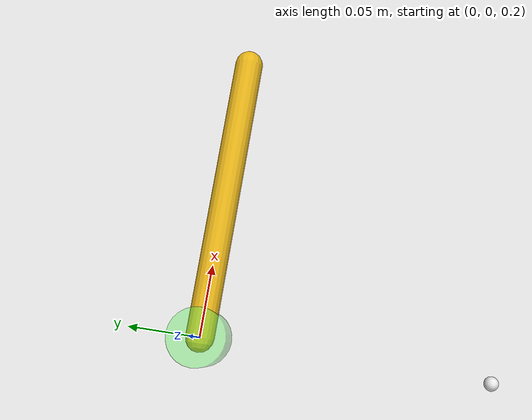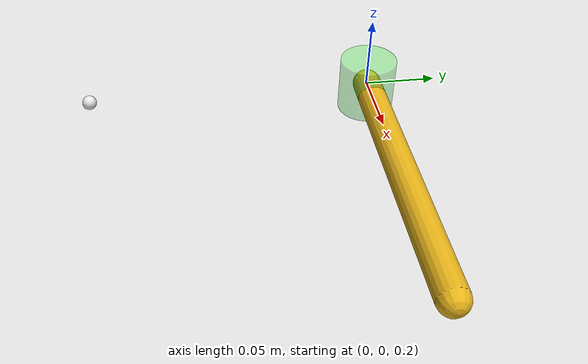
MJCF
<?xml version="1.0" encoding="utf-8"?>
<mujoco model="test">
	<compiler coordinate="global"/>
	<option>
		<flag gravity="disable"/>
	</option>

	<default>
		<geom rgba=".9 .7 .1 1" size="0.01"/>
		<site type="sphere" rgba=".9 .9 .9 1" size="0.005"/>
		<joint type="hinge" axis="0 1 0" limited="true" range="-120 120" solimplimit="0.95 0.95 0.1"/>
	</default>

	<visual>
		<headlight diffuse=".7 .7 .7"/>
	</visual>

	<worldbody>

		<site pos="0. -0.2 0.2" size="0.005"/>

		<body>
			<geom type="capsule" fromto="0 0 0.2  0.2 0 0.2"/>
			<geom name="g1" type="cylinder" fromto="0 0 0.18    0 0 0.22"
					size="0.02" rgba=".3 .9 .3 .4"/>
			<joint name="j0-0" limited="false" axis="0 0 1" pos="0 0 0.2"/>
			<site name="end-1" pos="0.2 0 0.2" />
		</body>

	</worldbody>

	<sensor>
		<framepos objname="end-1" objtype="site"/>
	</sensor>

</mujoco>
